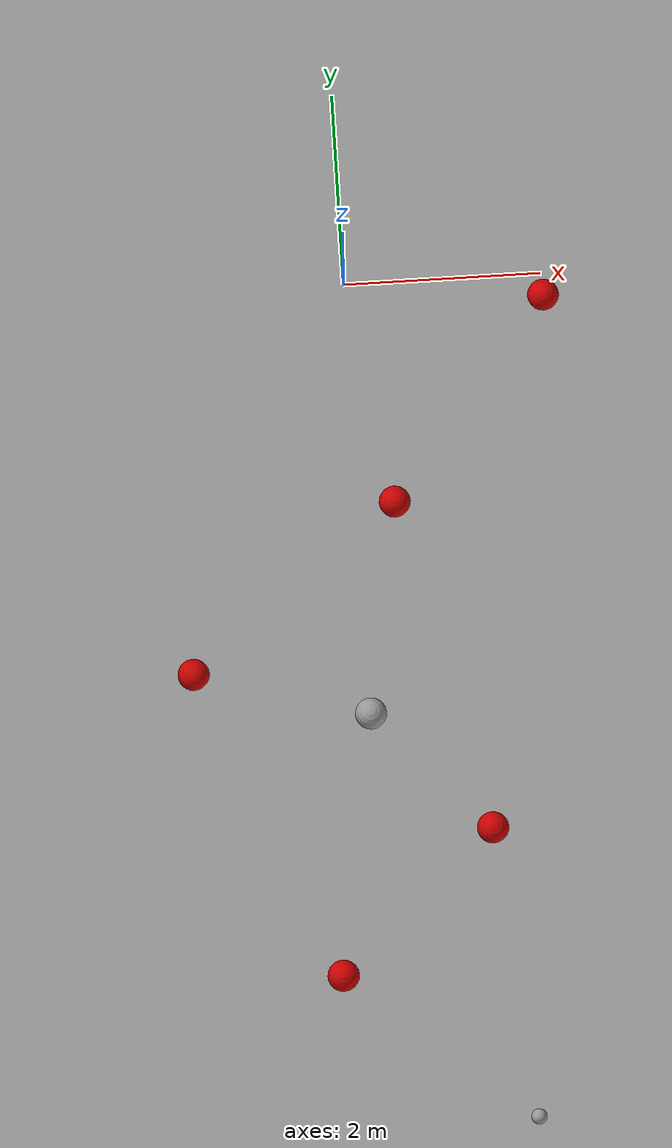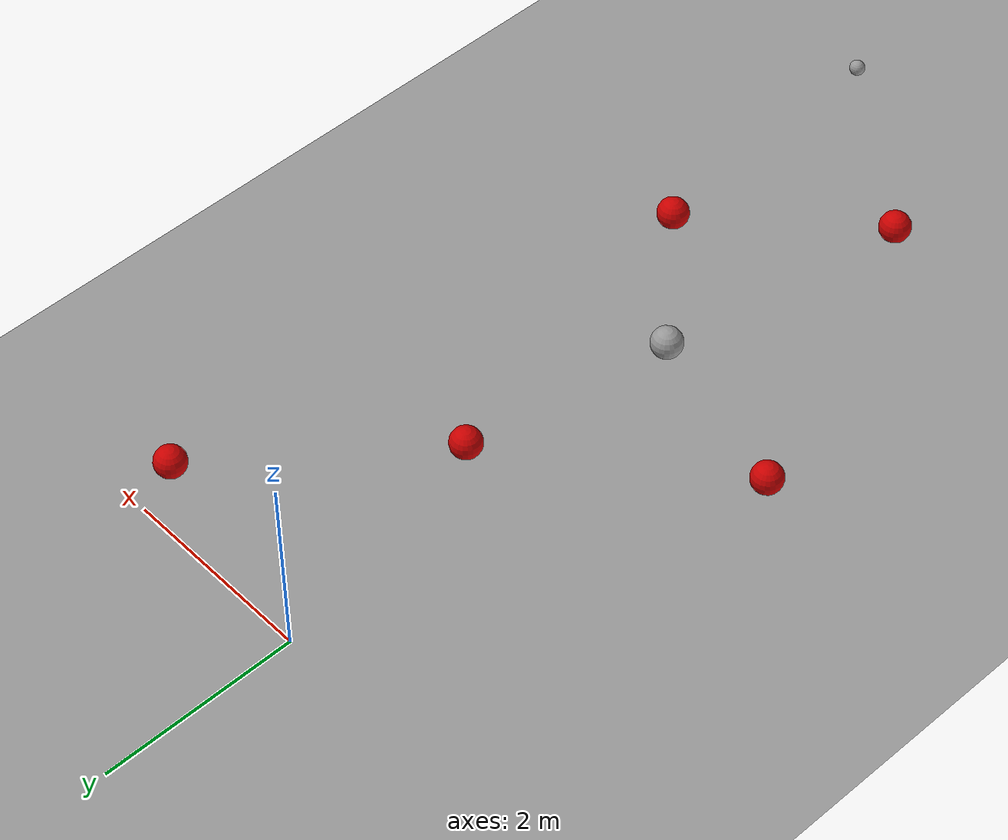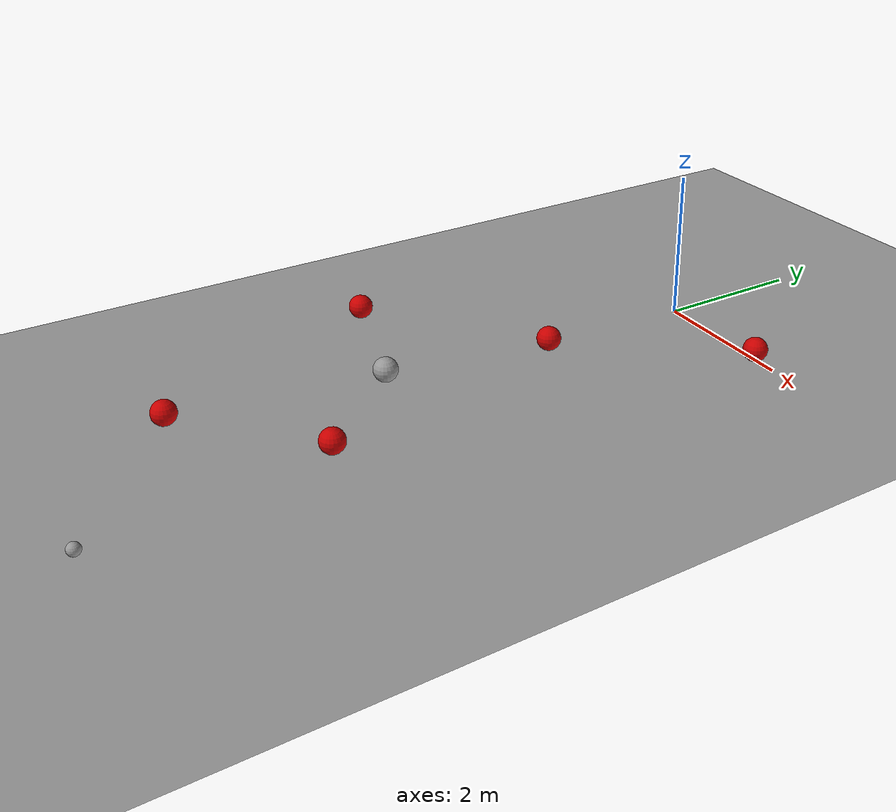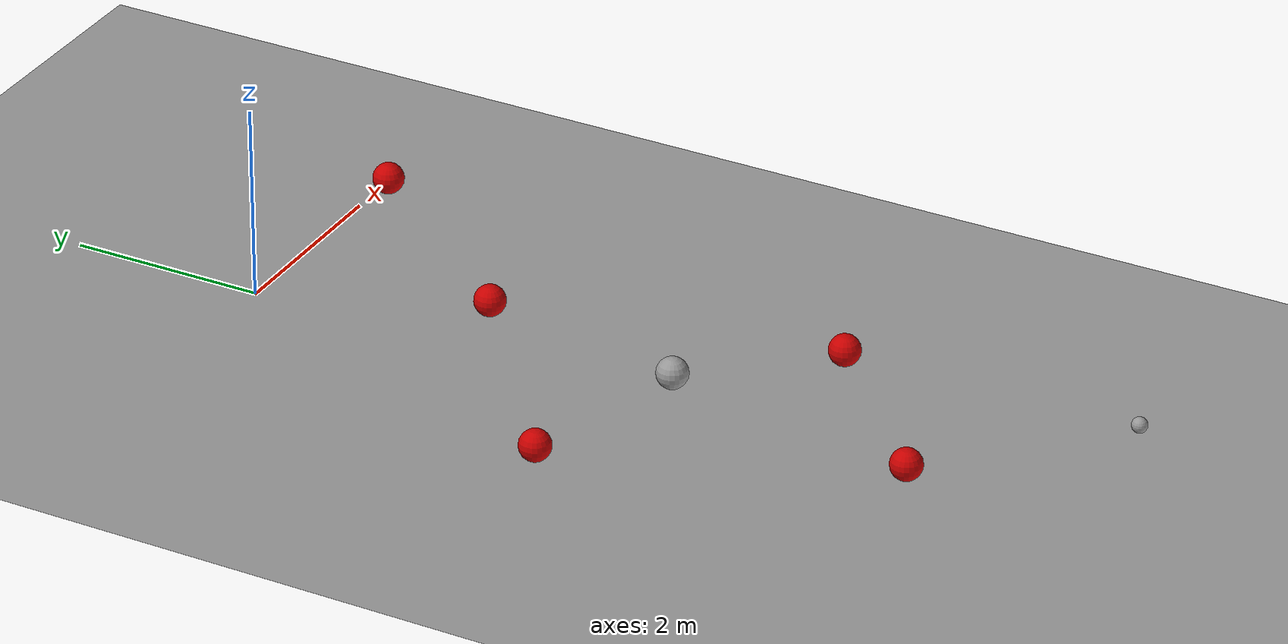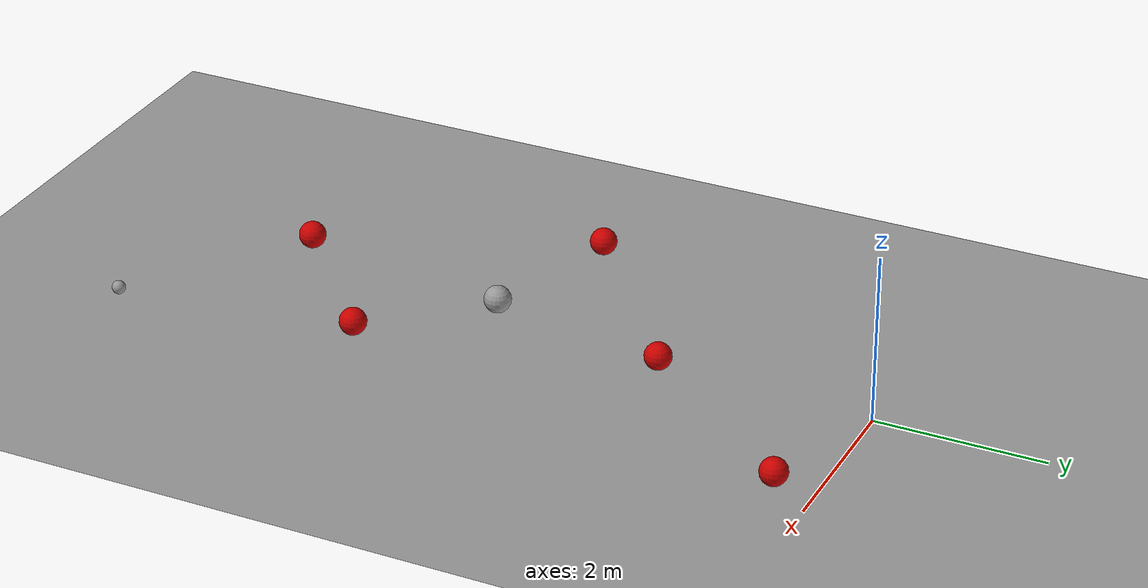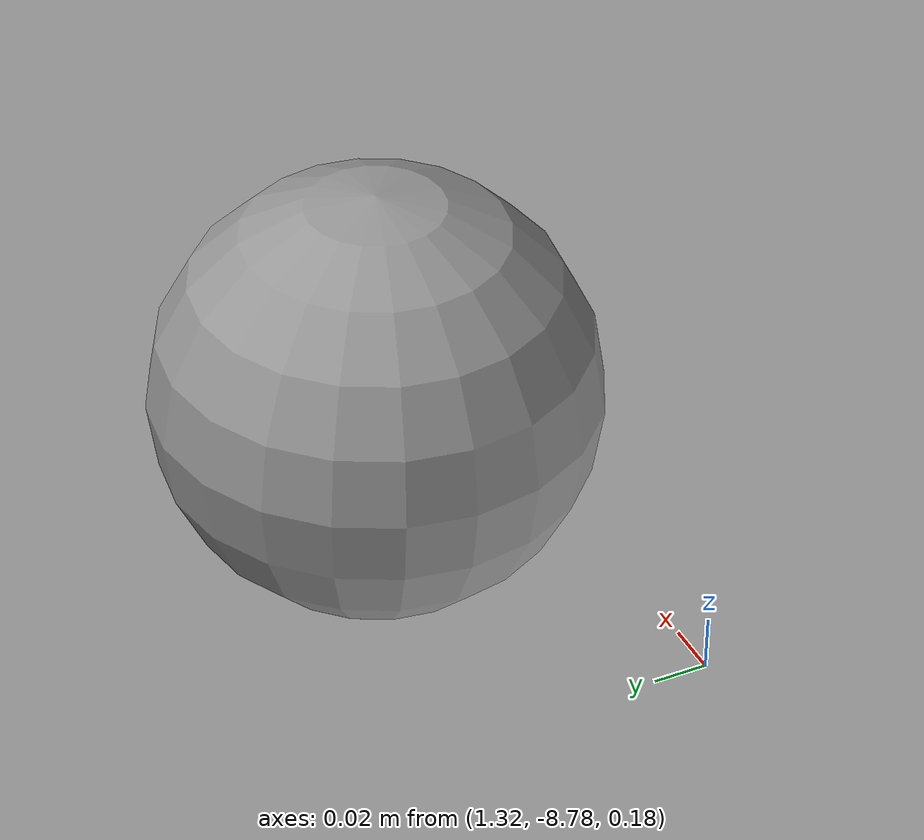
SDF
<sdf version="1.6">
 <world name="default">
  <light name="sun" type="directional">
   <pose>0 0 10 0 -0 0</pose>
   <diffuse>0.8 0.8 0.8 1</diffuse>
   <specular>0.2 0.2 0.2 1</specular>
   <attenuation>
    <range>1000</range>
    <constant>0.9</constant>
    <linear>0.01</linear>
    <quadratic>0.001</quadratic>
   </attenuation>
   <direction>0.5 0.1 -0.9</direction>
  </light>
  <scene><ambient>0.4 0.4 0.4 1</ambient><background>0.7 0.7 0.7 1</background><shadows>1</shadows></scene>
  <physics name="default_physics" default="0" type="ode">
   <max_step_size>0.01</max_step_size>
   <real_time_factor>1</real_time_factor>
   <real_time_update_rate>100</real_time_update_rate>
  </physics>
  <model name="ground_plane_0">
   <static>1</static>
   <link name="link">
    <collision name="collision">
     <geometry><plane><normal>0 0 1</normal><size>100 100</size></plane></geometry>
     <surface><friction><ode><mu>100</mu><mu2>50</mu2></ode></friction></surface>
    </collision>
    <visual name="visual">
     <cast_shadows>0</cast_shadows>
     <geometry><plane><normal>0 0 1</normal><size>100 100</size></plane></geometry>
     <material>
      <script><uri>file://media/materials/scripts/gazebo.material</uri><name>Gazebo/Grey</name></script>
     </material>
    </visual>
    <velocity_decay><linear>0</linear><angular>0</angular></velocity_decay>
   </link>
   <pose>0.497681 0 0 0 -0 0</pose>
  </model>
  <gravity>0 0 -9.8</gravity>
  <magnetic_field>6e-06 2.3e-05 -4.2e-05</magnetic_field>
  <atmosphere type="adiabatic"/>
  <spherical_coordinates>
   <surface_model>EARTH_WGS84</surface_model>
   <latitude_deg>0</latitude_deg>
   <longitude_deg>0</longitude_deg>
   <elevation>0</elevation>
   <heading_deg>0</heading_deg>
  </spherical_coordinates>
  <model name="finalSphere_clone_clone_3">
   <link name="link">
    <inertial>
     <mass>0.00392993</mass>
     <inertia>
      <ixx>9.78683e-06</ixx>
      <ixy>0</ixy>
      <ixz>0</ixz>
      <iyy>9.78683e-06</iyy>
      <iyz>0</iyz>
      <izz>9.78683e-06</izz>
     </inertia>
    </inertial>
    <visual name="visual">
     <geometry><sphere><radius>0.0789047</radius></sphere></geometry>
     <material>
      <script><name>Gazebo/Grey</name><uri>file://media/materials/scripts/gazebo.material</uri></script>
      <ambient>0.3 0.3 0.3 1</ambient>
      <diffuse>0.7 0.7 0.7 1</diffuse>
      <specular>0.01 0.01 0.01 1</specular>
      <emissive>0 0 0 1</emissive>
     </material>
    </visual>
    <collision name="collision">
     <geometry><sphere><radius>0.078905</radius></sphere></geometry>
     <surface>
      <friction>
       <ode><mu>1</mu><mu2>1</mu2><fdir1>0 0 0</fdir1><slip1>0</slip1><slip2>0</slip2></ode>
       <torsional>
        <coefficient>1</coefficient>
        <patch_radius>0</patch_radius>
        <surface_radius>0</surface_radius>
        <use_patch_radius>1</use_patch_radius>
        <ode><slip>0</slip></ode>
       </torsional>
      </friction>
      <bounce><restitution_coefficient>0</restitution_coefficient><threshold>1e+06</threshold></bounce>
      <contact>
       <collide_without_contact>0</collide_without_contact>
       <collide_without_contact_bitmask>1</collide_without_contact_bitmask>
       <collide_bitmask>1</collide_bitmask>
       <ode>
        <soft_cfm>0</soft_cfm>
        <soft_erp>0.2</soft_erp>
        <kp>1e+13</kp>
        <kd>1</kd>
        <max_vel>0.01</max_vel>
        <min_depth>0</min_depth>
       </ode>
       <bullet>
        <split_impulse>1</split_impulse>
        <split_impulse_penetration_threshold>-0.01</split_impulse_penetration_threshold>
        <soft_cfm>0</soft_cfm>
        <soft_erp>0.2</soft_erp>
        <kp>1e+13</kp>
        <kd>1</kd>
       </bullet>
      </contact>
     </surface>
    </collision>
   </link>
   <static>0</static>
   <pose>1.40576 -8.69466 0.268705 0 -0 0</pose>
  </model>
  <model name="finalSphere_clone_clone_1_0">
   <link name="link">
    <pose>-0.03475 -0.086643 0.131362 0 -0 0</pose>
    <inertial>
     <mass>0.00392993</mass>
     <inertia>
      <ixx>9.78683e-06</ixx>
      <ixy>0</ixy>
      <ixz>0</ixz>
      <iyy>9.78683e-06</iyy>
      <iyz>0</iyz>
      <izz>9.78683e-06</izz>
     </inertia>
    </inertial>
    <visual name="visual">
     <geometry><sphere><radius>0.159355</radius></sphere></geometry>
     <material>
      <script><name>Gazebo/Grey</name><uri>file://media/materials/scripts/gazebo.material</uri></script>
      <ambient>0.3 0.3 0.3 1</ambient>
      <diffuse>0.7 0.7 0.7 1</diffuse>
      <specular>0.01 0.01 0.01 1</specular>
      <emissive>0 0 0 1</emissive>
     </material>
    </visual>
    <collision name="collision">
     <geometry><sphere><radius>0.159355</radius></sphere></geometry>
     <surface>
      <friction>
       <ode><mu>1</mu><mu2>1</mu2><fdir1>0 0 0</fdir1><slip1>0</slip1><slip2>0</slip2></ode>
       <torsional>
        <coefficient>1</coefficient>
        <patch_radius>0</patch_radius>
        <surface_radius>0</surface_radius>
        <use_patch_radius>1</use_patch_radius>
        <ode><slip>0</slip></ode>
       </torsional>
      </friction>
      <bounce><restitution_coefficient>0</restitution_coefficient><threshold>1e+06</threshold></bounce>
      <contact>
       <collide_without_contact>0</collide_without_contact>
       <collide_without_contact_bitmask>1</collide_without_contact_bitmask>
       <collide_bitmask>1</collide_bitmask>
       <ode>
        <soft_cfm>0</soft_cfm>
        <soft_erp>0.2</soft_erp>
        <kp>1e+13</kp>
        <kd>1</kd>
        <max_vel>0.01</max_vel>
        <min_depth>0</min_depth>
       </ode>
       <bullet>
        <split_impulse>1</split_impulse>
        <split_impulse_penetration_threshold>-0.01</split_impulse_penetration_threshold>
        <soft_cfm>0</soft_cfm>
        <soft_erp>0.2</soft_erp>
        <kp>1e+13</kp>
        <kd>1</kd>
       </bullet>
      </contact>
     </surface>
    </collision>
   </link>
   <static>0</static>
   <pose>0.027608 -4.46459 0.268705 0 -0 0</pose>
  </model>
  <model name="finalSphere_clone_clone_1_0_clone_0_0_0">
   <link name="link">
    <pose>-0.03475 -0.086643 0.131362 0 -0 0</pose>
    <inertial>
     <mass>0.00392993</mass>
     <inertia>
      <ixx>9.79e-06</ixx>
      <ixy>0</ixy>
      <ixz>0</ixz>
      <iyy>9.79e-06</iyy>
      <iyz>0</iyz>
      <izz>9.79e-06</izz>
     </inertia>
    </inertial>
    <visual name="visual">
     <geometry><sphere><radius>0.159355</radius></sphere></geometry>
     <material>
      <script><name>Gazebo/Grey</name><uri>file://media/materials/scripts/gazebo.material</uri></script>
      <ambient>0.8 0 0 1</ambient>
      <diffuse>0.7 0.7 0.7 1</diffuse>
      <specular>0.01 0.01 0.01 1</specular>
      <emissive>0 0 0 1</emissive>
      <shader type="vertex"><normal_map>__default__</normal_map></shader>
     </material>
    </visual>
    <collision name="collision">
     <geometry><sphere><radius>0.159355</radius></sphere></geometry>
     <surface>
      <friction>
       <ode><mu>1</mu><mu2>1</mu2><fdir1>0 0 0</fdir1><slip1>0</slip1><slip2>0</slip2></ode>
       <torsional>
        <coefficient>1</coefficient>
        <patch_radius>0</patch_radius>
        <surface_radius>0</surface_radius>
        <use_patch_radius>1</use_patch_radius>
        <ode><slip>0</slip></ode>
       </torsional>
      </friction>
      <bounce><restitution_coefficient>0</restitution_coefficient><threshold>1e+06</threshold></bounce>
      <contact>
       <collide_without_contact>0</collide_without_contact>
       <collide_without_contact_bitmask>1</collide_without_contact_bitmask>
       <collide_bitmask>1</collide_bitmask>
       <ode>
        <soft_cfm>0</soft_cfm>
        <soft_erp>0.2</soft_erp>
        <kp>1e+13</kp>
        <kd>1</kd>
        <max_vel>0.01</max_vel>
        <min_depth>0</min_depth>
       </ode>
       <bullet>
        <split_impulse>1</split_impulse>
        <split_impulse_penetration_threshold>-0.01</split_impulse_penetration_threshold>
        <soft_cfm>0</soft_cfm>
        <soft_erp>0.2</soft_erp>
        <kp>1e+13</kp>
        <kd>1</kd>
       </bullet>
      </contact>
     </surface>
    </collision>
   </link>
   <static>0</static>
   <pose>2.03494 -0.25071 0.268705 0 -0 0</pose>
  </model>
  <model name="finalSphere_clone_clone_1_0_clone_0_0_0_clone">
   <link name="link">
    <pose>-0.03475 -0.086643 0.131362 0 -0 0</pose>
    <inertial>
     <mass>0.00392993</mass>
     <inertia>
      <ixx>9.79e-06</ixx>
      <ixy>0</ixy>
      <ixz>0</ixz>
      <iyy>9.79e-06</iyy>
      <iyz>0</iyz>
      <izz>9.79e-06</izz>
     </inertia>
    </inertial>
    <visual name="visual">
     <geometry><sphere><radius>0.159355</radius></sphere></geometry>
     <material>
      <script><name>Gazebo/Grey</name><uri>file://media/materials/scripts/gazebo.material</uri></script>
      <ambient>0.8 0 0 1</ambient>
      <diffuse>0.7 0.7 0.7 1</diffuse>
      <specular>0.01 0.01 0.01 1</specular>
      <emissive>0 0 0 1</emissive>
      <shader type="vertex"><normal_map>__default__</normal_map></shader>
     </material>
    </visual>
    <collision name="collision">
     <geometry><sphere><radius>0.159355</radius></sphere></geometry>
     <surface>
      <friction>
       <ode><mu>1</mu><mu2>1</mu2><fdir1>0 0 0</fdir1><slip1>0</slip1><slip2>0</slip2></ode>
       <torsional>
        <coefficient>1</coefficient>
        <patch_radius>0</patch_radius>
        <surface_radius>0</surface_radius>
        <use_patch_radius>1</use_patch_radius>
        <ode><slip>0</slip></ode>
       </torsional>
      </friction>
      <bounce><restitution_coefficient>0</restitution_coefficient><threshold>1e+06</threshold></bounce>
      <contact>
       <collide_without_contact>0</collide_without_contact>
       <collide_without_contact_bitmask>1</collide_without_contact_bitmask>
       <collide_bitmask>1</collide_bitmask>
       <ode>
        <soft_cfm>0</soft_cfm>
        <soft_erp>0.2</soft_erp>
        <kp>1e+13</kp>
        <kd>1</kd>
        <max_vel>0.01</max_vel>
        <min_depth>0</min_depth>
       </ode>
       <bullet>
        <split_impulse>1</split_impulse>
        <split_impulse_penetration_threshold>-0.01</split_impulse_penetration_threshold>
        <soft_cfm>0</soft_cfm>
        <soft_erp>0.2</soft_erp>
        <kp>1e+13</kp>
        <kd>1</kd>
       </bullet>
      </contact>
     </surface>
    </collision>
   </link>
   <static>0</static>
   <pose>0.401675 -2.3061 0.268705 0 -0 0</pose>
  </model>
  <model name="finalSphere_clone_clone_1_0_clone_0_0_0_clone_0">
   <link name="link">
    <pose>-0.03475 -0.086643 0.131362 0 -0 0</pose>
    <inertial>
     <mass>0.00392993</mass>
     <inertia>
      <ixx>9.79e-06</ixx>
      <ixy>0</ixy>
      <ixz>0</ixz>
      <iyy>9.79e-06</iyy>
      <iyz>0</iyz>
      <izz>9.79e-06</izz>
     </inertia>
    </inertial>
    <visual name="visual">
     <geometry><sphere><radius>0.159355</radius></sphere></geometry>
     <material>
      <script><name>Gazebo/Grey</name><uri>file://media/materials/scripts/gazebo.material</uri></script>
      <ambient>0.8 0 0 1</ambient>
      <diffuse>0.7 0.7 0.7 1</diffuse>
      <specular>0.01 0.01 0.01 1</specular>
      <emissive>0 0 0 1</emissive>
      <shader type="vertex"><normal_map>__default__</normal_map></shader>
     </material>
    </visual>
    <collision name="collision">
     <geometry><sphere><radius>0.159355</radius></sphere></geometry>
     <surface>
      <friction>
       <ode><mu>1</mu><mu2>1</mu2><fdir1>0 0 0</fdir1><slip1>0</slip1><slip2>0</slip2></ode>
       <torsional>
        <coefficient>1</coefficient>
        <patch_radius>0</patch_radius>
        <surface_radius>0</surface_radius>
        <use_patch_radius>1</use_patch_radius>
        <ode><slip>0</slip></ode>
       </torsional>
      </friction>
      <bounce><restitution_coefficient>0</restitution_coefficient><threshold>1e+06</threshold></bounce>
      <contact>
       <collide_without_contact>0</collide_without_contact>
       <collide_without_contact_bitmask>1</collide_without_contact_bitmask>
       <collide_bitmask>1</collide_bitmask>
       <ode>
        <soft_cfm>0</soft_cfm>
        <soft_erp>0.2</soft_erp>
        <kp>1e+13</kp>
        <kd>1</kd>
        <max_vel>0.01</max_vel>
        <min_depth>0</min_depth>
       </ode>
       <bullet>
        <split_impulse>1</split_impulse>
        <split_impulse_penetration_threshold>-0.01</split_impulse_penetration_threshold>
        <soft_cfm>0</soft_cfm>
        <soft_erp>0.2</soft_erp>
        <kp>1e+13</kp>
        <kd>1</kd>
       </bullet>
      </contact>
     </surface>
    </collision>
   </link>
   <static>0</static>
   <pose>-1.72035 -3.96056 0.268705 0 -0 0</pose>
  </model>
  <model name="finalSphere_clone_clone_1_0_clone_0_0_0_clone_1">
   <link name="link">
    <pose>-0.03475 -0.086643 0.131362 0 -0 0</pose>
    <inertial>
     <mass>0.00392993</mass>
     <inertia>
      <ixx>9.79e-06</ixx>
      <ixy>0</ixy>
      <ixz>0</ixz>
      <iyy>9.79e-06</iyy>
      <iyz>0</iyz>
      <izz>9.79e-06</izz>
     </inertia>
    </inertial>
    <visual name="visual">
     <geometry><sphere><radius>0.159355</radius></sphere></geometry>
     <material>
      <script><name>Gazebo/Grey</name><uri>file://media/materials/scripts/gazebo.material</uri></script>
      <ambient>0.8 0 0 1</ambient>
      <diffuse>0.7 0.7 0.7 1</diffuse>
      <specular>0.01 0.01 0.01 1</specular>
      <emissive>0 0 0 1</emissive>
      <shader type="vertex"><normal_map>__default__</normal_map></shader>
     </material>
    </visual>
    <collision name="collision">
     <geometry><sphere><radius>0.159355</radius></sphere></geometry>
     <surface>
      <friction>
       <ode><mu>1</mu><mu2>1</mu2><fdir1>0 0 0</fdir1><slip1>0</slip1><slip2>0</slip2></ode>
       <torsional>
        <coefficient>1</coefficient>
        <patch_radius>0</patch_radius>
        <surface_radius>0</surface_radius>
        <use_patch_radius>1</use_patch_radius>
        <ode><slip>0</slip></ode>
       </torsional>
      </friction>
      <bounce><restitution_coefficient>0</restitution_coefficient><threshold>1e+06</threshold></bounce>
      <contact>
       <collide_without_contact>0</collide_without_contact>
       <collide_without_contact_bitmask>1</collide_without_contact_bitmask>
       <collide_bitmask>1</collide_bitmask>
       <ode>
        <soft_cfm>0</soft_cfm>
        <soft_erp>0.2</soft_erp>
        <kp>1e+13</kp>
        <kd>1</kd>
        <max_vel>0.01</max_vel>
        <min_depth>0</min_depth>
       </ode>
       <bullet>
        <split_impulse>1</split_impulse>
        <split_impulse_penetration_threshold>-0.01</split_impulse_penetration_threshold>
        <soft_cfm>0</soft_cfm>
        <soft_erp>0.2</soft_erp>
        <kp>1e+13</kp>
        <kd>1</kd>
       </bullet>
      </contact>
     </surface>
    </collision>
   </link>
   <static>0</static>
   <pose>-0.407804 -7.10095 0.268705 0 -0 0</pose>
  </model>
  <model name="finalSphere_clone_clone_1_0_clone_0_0_0_clone_2">
   <link name="link">
    <pose>-0.03475 -0.086643 0.131362 0 -0 0</pose>
    <inertial>
     <mass>0.00392993</mass>
     <inertia>
      <ixx>9.79e-06</ixx>
      <ixy>0</ixy>
      <ixz>0</ixz>
      <iyy>9.79e-06</iyy>
      <iyz>0</iyz>
      <izz>9.79e-06</izz>
     </inertia>
    </inertial>
    <visual name="visual">
     <geometry><sphere><radius>0.159355</radius></sphere></geometry>
     <material>
      <script><name>Gazebo/Grey</name><uri>file://media/materials/scripts/gazebo.material</uri></script>
      <ambient>0.8 0 0 1</ambient>
      <diffuse>0.7 0.7 0.7 1</diffuse>
      <specular>0.01 0.01 0.01 1</specular>
      <emissive>0 0 0 1</emissive>
      <shader type="vertex"><normal_map>__default__</normal_map></shader>
     </material>
    </visual>
    <collision name="collision">
     <geometry><sphere><radius>0.159355</radius></sphere></geometry>
     <surface>
      <friction>
       <ode><mu>1</mu><mu2>1</mu2><fdir1>0 0 0</fdir1><slip1>0</slip1><slip2>0</slip2></ode>
       <torsional>
        <coefficient>1</coefficient>
        <patch_radius>0</patch_radius>
        <surface_radius>0</surface_radius>
        <use_patch_radius>1</use_patch_radius>
        <ode><slip>0</slip></ode>
       </torsional>
      </friction>
      <bounce><restitution_coefficient>0</restitution_coefficient><threshold>1e+06</threshold></bounce>
      <contact>
       <collide_without_contact>0</collide_without_contact>
       <collide_without_contact_bitmask>1</collide_without_contact_bitmask>
       <collide_bitmask>1</collide_bitmask>
       <ode>
        <soft_cfm>0</soft_cfm>
        <soft_erp>0.2</soft_erp>
        <kp>1e+13</kp>
        <kd>1</kd>
        <max_vel>0.01</max_vel>
        <min_depth>0</min_depth>
       </ode>
       <bullet>
        <split_impulse>1</split_impulse>
        <split_impulse_penetration_threshold>-0.01</split_impulse_penetration_threshold>
        <soft_cfm>0</soft_cfm>
        <soft_erp>0.2</soft_erp>
        <kp>1e+13</kp>
        <kd>1</kd>
       </bullet>
      </contact>
     </surface>
    </collision>
   </link>
   <static>0</static>
   <pose>1.17037 -5.69783 0.268705 0 -0 0</pose>
  </model>
 </world>
</sdf>
